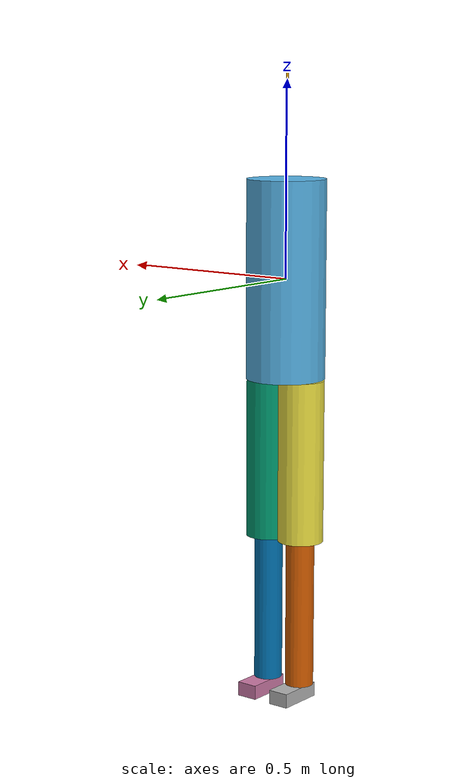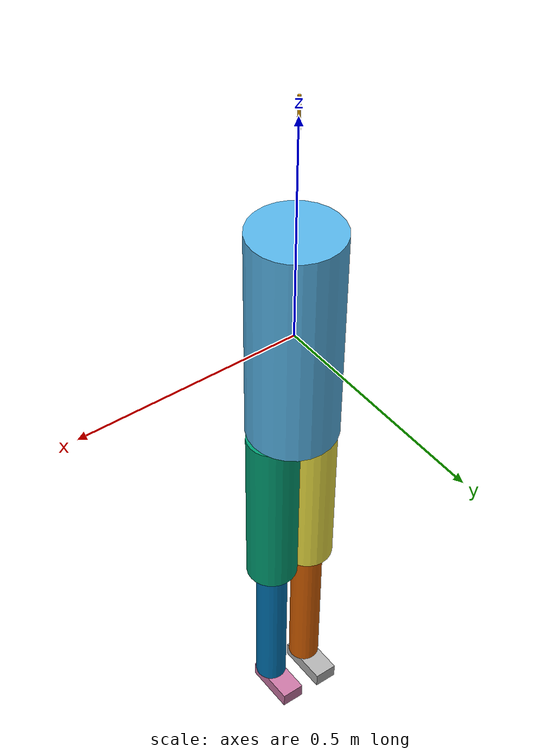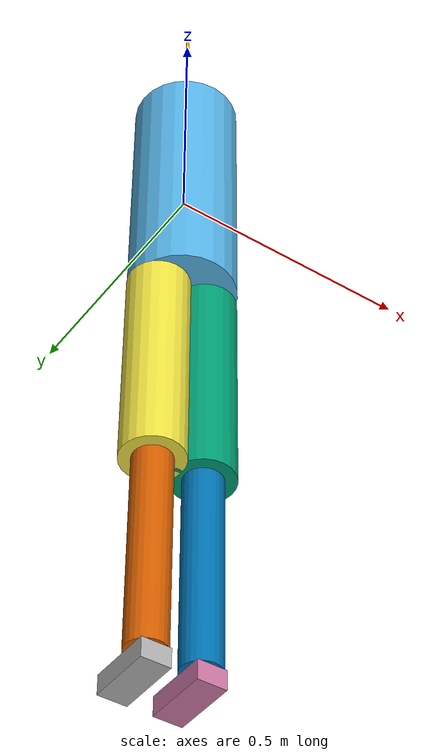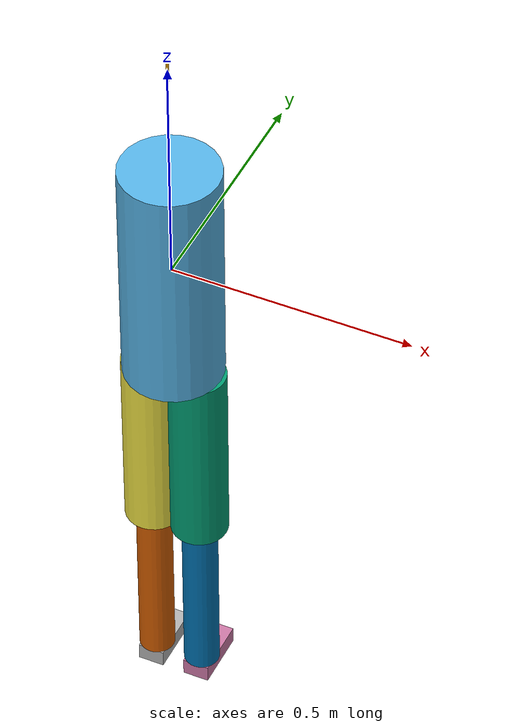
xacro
<?xml version="1.0"?>
<robot xmlns:xacro="http://www.ros.org/wiki/xacro" name="arm">

<xacro:property name="total_mass" value="70" /> <!--KG-->
<xacro:property name="height" value="1.75" /> <!--METERS-->

<!--Height Proportions-->
<xacro:property name="head_len" value="${height*0.13}" />
<xacro:property name="neck_len" value="${height*0.04}" />
<xacro:property name="torso_len" value="${height*0.29}" />
<xacro:property name="upper_arm_len" value="${height*0.19}" />
<xacro:property name="forearm_len" value="${height*0.15}" />
<xacro:property name="hand_len" value="${height*0.11}" />
<xacro:property name="thigh_len" value="${height*0.24}" />
<xacro:property name="calf_len" value="${height*0.22}" />
<xacro:property name="foot_len" value="${height*0.07}" />

<!--Limb Thickness-->
<xacro:property name="upper_arm_thickness" value="${upper_arm_len*0.09}" />
<xacro:property name="forearm_thickness" value="${forearm_len*0.08}" />
<xacro:property name="thigh_thickness" value="${thigh_len*0.14}" />
<xacro:property name="calf_thickness" value="${calf_len*0.095}" />
<xacro:property name="torso_thickness" value="${torso_len*0.20}" />
<xacro:property name="neck_thickness" value="${neck_len*0.045}" />
<xacro:property name="foot_thickness" value="${foot_len*0.045}" />

<xacro:macro name="limb" params="name length offset rpy width">
    <link name="${name}">
        <visual>
            <geometry>
                <cylinder radius="${width}" length="${length}"/>
            </geometry>
            <origin xyz="${offset}" rpy="${rpy}"/>
        </visual>
        <collision>
            <geometry>
                <cylinder radius="${width}" length="${length}"/>
            </geometry>
            <origin xyz="${offset}" rpy="${rpy}"/>
        </collision>
    </link>
</xacro:macro>

<xacro:macro name="affix" params="name parent child">
    <joint name="${name}" type="fixed">
        <parent link="${parent}"/>
        <child link="${child}"/>
    </joint>
</xacro:macro>

<xacro:macro name="revolve" params="name parent child hi lo axis offset">
    <joint name="${name}" type="revolute">
        <parent link="${parent}"/>
        <child link="${child}"/>
        <limit lower="${lo}" upper="${hi}" effort="20.0" velocity="20.0"/>
        <origin xyz="${offset}"/>
        <axis xyz="${axis}"/>
    </joint>
</xacro:macro>

<!--LIMBS-->
<xacro:limb name="neck" length="${neck_len}" offset="0 0 ${torso_len}" rpy="0 0 0" width="${neck_thickness}"/>

<xacro:limb name="torso" length="${torso_len}" offset="0 0 0" rpy="0 0 0" width="${torso_thickness}"/>

<xacro:limb name="right_thigh" length="${thigh_len}" offset="0 0 -${thigh_len*.5}" rpy="0 0 0" width="${thigh_thickness}"/>
<xacro:limb name="left_thigh" length="${thigh_len}" offset="0 0 -${thigh_len*.5}" rpy="0 0 0" width="${thigh_thickness}"/>

<xacro:limb name="right_calf" length="${calf_len}" offset="0 0 -${calf_len*.5}" rpy="0 0 0" width="${calf_thickness}"/>
<xacro:limb name="left_calf" length="${calf_len}" offset="0 0 -${calf_len*.5}" rpy="0 0 0" width="${calf_thickness}"/>

<link name="right_foot">
    <visual>
        <geometry>
            <box size="${calf_thickness*1.5} ${foot_len} ${calf_thickness}"/>
        </geometry>
        <origin xyz="0 ${foot_len * .25} -${calf_thickness * .5}"/>
    </visual>
    <collision>
        <geometry>
            <box size="${calf_thickness*1.5} ${foot_len} ${calf_thickness}"/>
        </geometry>
        <origin xyz="0 ${foot_len * .25} -${calf_thickness * .5}"/>
    </collision>
</link>

<link name="left_foot">
    <visual>
        <geometry>
            <box size="${calf_thickness*1.5} ${foot_len} ${calf_thickness}"/>
        </geometry>
        <origin xyz="0 ${foot_len * .25} -${calf_thickness * .5}"/>
    </visual>
    <collision>
        <geometry>
            <box size="${calf_thickness*1.5} ${foot_len} ${calf_thickness}"/>
        </geometry>
        <origin xyz="0 ${foot_len * .25} -${calf_thickness * .5}"/>
    </collision>
</link>

<xacro:affix name="vertibre" parent="torso" child="neck"/>

<!--REV JOINTS-->
<xacro:revolve name="right_hip_flexor" parent="torso" child="right_thigh" lo="-1.2" hi="1.2"
axis="1 0 0" offset="${torso_thickness*.5} 0 -${torso_len*.5}"/>
<xacro:revolve name="left_hip_flexor" parent="torso" child="left_thigh" lo="-1.2" hi="1.2"
axis="1 0 0" offset="-${torso_thickness*.5} 0 -${torso_len*.5}"/>

<xacro:revolve name="right_knee" parent="right_thigh" child="right_calf" lo="-1.2" hi="0"
axis="1 0 0" offset="0 0 -${thigh_len}"/>
<xacro:revolve name="left_knee" parent="left_thigh" child="left_calf" lo="-1.2" hi="0"
axis="1 0 0" offset="0 0 -${thigh_len}"/>

<xacro:revolve name="right_ankle" parent="right_calf" child="right_foot" lo="-1.2" hi="1.2"
axis="1 0 0" offset="0 0 -${calf_len}"/>
<xacro:revolve name="left_ankle" parent="left_calf" child="left_foot" lo="-1.2" hi="1.2"
axis="1 0 0" offset="0 0 -${calf_len}"/>

</robot>
